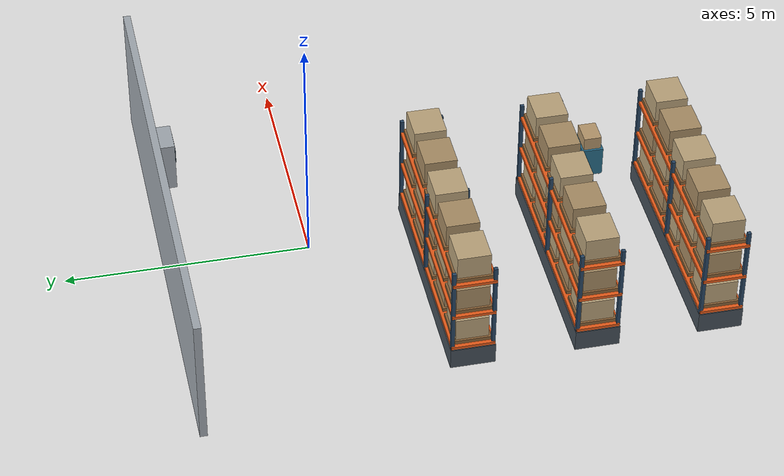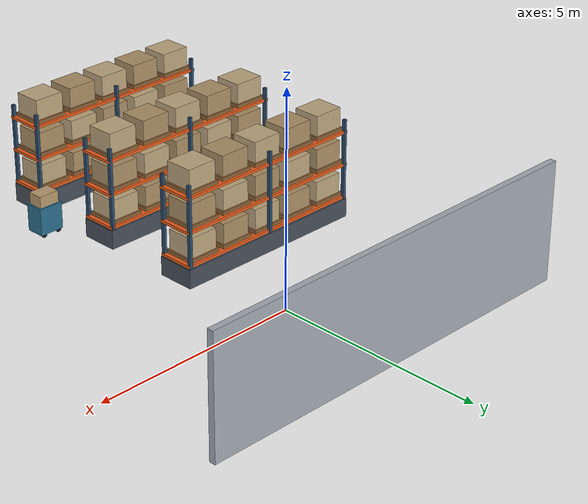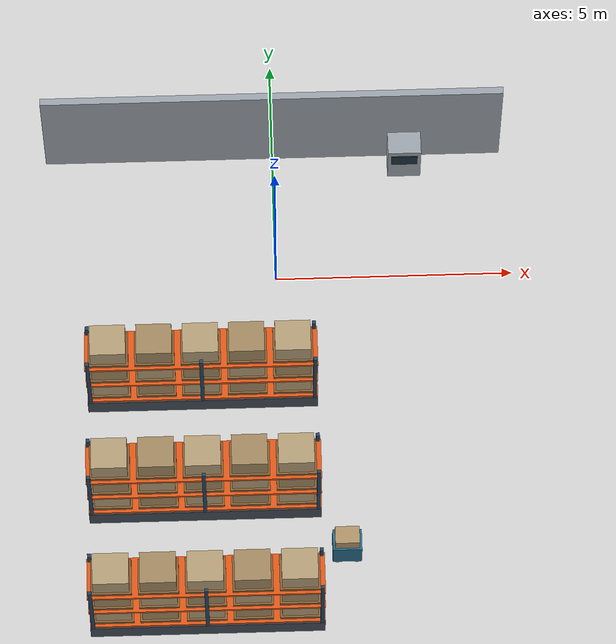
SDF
<sdf version="1.6">
 <world name="warehouse_logistics">
  <model name="warehouse_ground">
   <static>true</static>
   <link name="floor">
    <collision name="floor_collision">
     <geometry><plane><normal>0 0 1</normal><size>40 70</size></plane></geometry>
    </collision>
   </link>
  </model>
  <model name="warehouse_wall_north">
   <static>true</static>
   <pose>0.000000000 2.925000000 0.000000000 0.000000000 0.000000000 0.000000000</pose>
   <link name="structure">
    <collision name="mapped_solid_collision">
     <pose>0.000000000 0.000000000 1.400000000 0.000000000 0.000000000 0.000000000</pose>
     <geometry><box><size>9.700000000 0.150000000 2.800000000</size></box></geometry>
    </collision>
    <visual name="mapped_solid_visual">
     <pose>0.000000000 0.000000000 1.400000000 0.000000000 0.000000000 0.000000000</pose>
     <geometry><box><size>9.700000000 0.150000000 2.800000000</size></box></geometry>
     <material><ambient>.64 .67 .70 1</ambient><diffuse>.64 .67 .70 1</diffuse></material>
    </visual>
   </link>
  </model>
  <model name="warehouse_home_dock">
   <static>true</static>
   <pose>2.800000000 2.600000000 0.000000000 0.000000000 0.000000000 0.000000000</pose>
   <link name="structure">
    <collision name="mapped_solid_collision">
     <pose>0.000000000 0.000000000 0.550000000 0.000000000 0.000000000 0.000000000</pose>
     <geometry><box><size>0.700000000 0.500000000 1.100000000</size></box></geometry>
    </collision>
    <visual name="mapped_solid_visual">
     <pose>0.000000000 0.000000000 0.550000000 0.000000000 0.000000000 0.000000000</pose>
     <geometry><box><size>0.700000000 0.500000000 1.100000000</size></box></geometry>
     <material><ambient>.64 .67 .70 1</ambient><diffuse>.64 .67 .70 1</diffuse></material>
    </visual>
    <visual name="charging_panel_visual">
     <pose>0.000000000 -0.251000000 0.780000000 0.000000000 0.000000000 0.000000000</pose>
     <geometry><box><size>0.550000000 0.040000000 0.350000000</size></box></geometry>
     <material><ambient>.12 .20 .26 1</ambient><diffuse>.12 .20 .26 1</diffuse></material>
    </visual>
   </link>
  </model>
  <model name="warehouse_rack_01">
   <static>true</static>
   <pose>-1.600000000 -2.500000000 0.000000000 0.000000000 0.000000000 0.000000000</pose>
   <link name="structure">
    <collision name="mapped_solid_collision">
     <pose>0.000000000 0.000000000 0.225000000 0.000000000 0.000000000 0.000000000</pose>
     <geometry><box><size>4.800000000 0.900000000 0.450000000</size></box></geometry>
    </collision>
    <visual name="mapped_solid_visual">
     <pose>0.000000000 0.000000000 0.225000000 0.000000000 0.000000000 0.000000000</pose>
     <geometry><box><size>4.800000000 0.900000000 0.450000000</size></box></geometry>
     <material><ambient>.27 .31 .35 1</ambient><diffuse>.27 .31 .35 1</diffuse></material>
    </visual>
    <visual name="upright_0_0_visual">
     <pose>-2.340000000 -0.405000000 1.200000000 0.000000000 0.000000000 0.000000000</pose>
     <geometry><box><size>0.075000000 0.075000000 2.400000000</size></box></geometry>
     <material><ambient>.16 .28 .40 1</ambient><diffuse>.16 .28 .40 1</diffuse></material>
    </visual>
    <visual name="upright_0_1_visual">
     <pose>-2.340000000 0.405000000 1.200000000 0.000000000 0.000000000 0.000000000</pose>
     <geometry><box><size>0.075000000 0.075000000 2.400000000</size></box></geometry>
     <material><ambient>.16 .28 .40 1</ambient><diffuse>.16 .28 .40 1</diffuse></material>
    </visual>
    <visual name="upright_1_0_visual">
     <pose>0.000000000 -0.405000000 1.200000000 0.000000000 0.000000000 0.000000000</pose>
     <geometry><box><size>0.075000000 0.075000000 2.400000000</size></box></geometry>
     <material><ambient>.16 .28 .40 1</ambient><diffuse>.16 .28 .40 1</diffuse></material>
    </visual>
    <visual name="upright_1_1_visual">
     <pose>0.000000000 0.405000000 1.200000000 0.000000000 0.000000000 0.000000000</pose>
     <geometry><box><size>0.075000000 0.075000000 2.400000000</size></box></geometry>
     <material><ambient>.16 .28 .40 1</ambient><diffuse>.16 .28 .40 1</diffuse></material>
    </visual>
    <visual name="upright_2_0_visual">
     <pose>2.340000000 -0.405000000 1.200000000 0.000000000 0.000000000 0.000000000</pose>
     <geometry><box><size>0.075000000 0.075000000 2.400000000</size></box></geometry>
     <material><ambient>.16 .28 .40 1</ambient><diffuse>.16 .28 .40 1</diffuse></material>
    </visual>
    <visual name="upright_2_1_visual">
     <pose>2.340000000 0.405000000 1.200000000 0.000000000 0.000000000 0.000000000</pose>
     <geometry><box><size>0.075000000 0.075000000 2.400000000</size></box></geometry>
     <material><ambient>.16 .28 .40 1</ambient><diffuse>.16 .28 .40 1</diffuse></material>
    </visual>
    <visual name="shelf_0_visual">
     <pose>0.000000000 0.000000000 0.500000000 0.000000000 0.000000000 0.000000000</pose>
     <geometry><box><size>4.800000000 0.870000000 0.065000000</size></box></geometry>
     <material><ambient>.92 .36 .10 1</ambient><diffuse>.92 .36 .10 1</diffuse></material>
    </visual>
    <visual name="pallet_0_0_visual">
     <pose>-1.910000000 0.000000000 0.575000000 0.000000000 0.000000000 0.000000000</pose>
     <geometry><box><size>0.820000000 0.750000000 0.080000000</size></box></geometry>
     <material><ambient>.55 .39 .22 1</ambient><diffuse>.55 .39 .22 1</diffuse></material>
    </visual>
    <visual name="load_0_0_visual">
     <pose>-1.910000000 0.000000000 0.855000000 0.000000000 0.000000000 0.000000000</pose>
     <geometry><box><size>0.730000000 0.660000000 0.480000000</size></box></geometry>
     <material><ambient>.74 .65 .49 1</ambient><diffuse>.74 .65 .49 1</diffuse></material>
    </visual>
    <visual name="pallet_0_1_visual">
     <pose>-0.960000000 0.000000000 0.575000000 0.000000000 0.000000000 0.000000000</pose>
     <geometry><box><size>0.820000000 0.750000000 0.080000000</size></box></geometry>
     <material><ambient>.55 .39 .22 1</ambient><diffuse>.55 .39 .22 1</diffuse></material>
    </visual>
    <visual name="load_0_1_visual">
     <pose>-0.960000000 0.000000000 0.855000000 0.000000000 0.000000000 0.000000000</pose>
     <geometry><box><size>0.730000000 0.660000000 0.480000000</size></box></geometry>
     <material><ambient>.67 .56 .40 1</ambient><diffuse>.67 .56 .40 1</diffuse></material>
    </visual>
    <visual name="pallet_0_2_visual">
     <pose>-0.010000000 0.000000000 0.575000000 0.000000000 0.000000000 0.000000000</pose>
     <geometry><box><size>0.820000000 0.750000000 0.080000000</size></box></geometry>
     <material><ambient>.55 .39 .22 1</ambient><diffuse>.55 .39 .22 1</diffuse></material>
    </visual>
    <visual name="load_0_2_visual">
     <pose>-0.010000000 0.000000000 0.855000000 0.000000000 0.000000000 0.000000000</pose>
     <geometry><box><size>0.730000000 0.660000000 0.480000000</size></box></geometry>
     <material><ambient>.74 .65 .49 1</ambient><diffuse>.74 .65 .49 1</diffuse></material>
    </visual>
    <visual name="pallet_0_3_visual">
     <pose>0.940000000 0.000000000 0.575000000 0.000000000 0.000000000 0.000000000</pose>
     <geometry><box><size>0.820000000 0.750000000 0.080000000</size></box></geometry>
     <material><ambient>.55 .39 .22 1</ambient><diffuse>.55 .39 .22 1</diffuse></material>
    </visual>
    <visual name="load_0_3_visual">
     <pose>0.940000000 0.000000000 0.855000000 0.000000000 0.000000000 0.000000000</pose>
     <geometry><box><size>0.730000000 0.660000000 0.480000000</size></box></geometry>
     <material><ambient>.67 .56 .40 1</ambient><diffuse>.67 .56 .40 1</diffuse></material>
    </visual>
    <visual name="pallet_0_4_visual">
     <pose>1.890000000 0.000000000 0.575000000 0.000000000 0.000000000 0.000000000</pose>
     <geometry><box><size>0.820000000 0.750000000 0.080000000</size></box></geometry>
     <material><ambient>.55 .39 .22 1</ambient><diffuse>.55 .39 .22 1</diffuse></material>
    </visual>
    <visual name="load_0_4_visual">
     <pose>1.890000000 0.000000000 0.855000000 0.000000000 0.000000000 0.000000000</pose>
     <geometry><box><size>0.730000000 0.660000000 0.480000000</size></box></geometry>
     <material><ambient>.74 .65 .49 1</ambient><diffuse>.74 .65 .49 1</diffuse></material>
    </visual>
    <visual name="shelf_1_visual">
     <pose>0.000000000 0.000000000 1.300000000 0.000000000 0.000000000 0.000000000</pose>
     <geometry><box><size>4.800000000 0.870000000 0.065000000</size></box></geometry>
     <material><ambient>.92 .36 .10 1</ambient><diffuse>.92 .36 .10 1</diffuse></material>
    </visual>
    <visual name="pallet_1_0_visual">
     <pose>-1.910000000 0.000000000 1.375000000 0.000000000 0.000000000 0.000000000</pose>
     <geometry><box><size>0.820000000 0.750000000 0.080000000</size></box></geometry>
     <material><ambient>.55 .39 .22 1</ambient><diffuse>.55 .39 .22 1</diffuse></material>
    </visual>
    <visual name="load_1_0_visual">
     <pose>-1.910000000 0.000000000 1.655000000 0.000000000 0.000000000 0.000000000</pose>
     <geometry><box><size>0.730000000 0.660000000 0.480000000</size></box></geometry>
     <material><ambient>.67 .56 .40 1</ambient><diffuse>.67 .56 .40 1</diffuse></material>
    </visual>
    <visual name="pallet_1_1_visual">
     <pose>-0.960000000 0.000000000 1.375000000 0.000000000 0.000000000 0.000000000</pose>
     <geometry><box><size>0.820000000 0.750000000 0.080000000</size></box></geometry>
     <material><ambient>.55 .39 .22 1</ambient><diffuse>.55 .39 .22 1</diffuse></material>
    </visual>
    <visual name="load_1_1_visual">
     <pose>-0.960000000 0.000000000 1.655000000 0.000000000 0.000000000 0.000000000</pose>
     <geometry><box><size>0.730000000 0.660000000 0.480000000</size></box></geometry>
     <material><ambient>.74 .65 .49 1</ambient><diffuse>.74 .65 .49 1</diffuse></material>
    </visual>
    <visual name="pallet_1_2_visual">
     <pose>-0.010000000 0.000000000 1.375000000 0.000000000 0.000000000 0.000000000</pose>
     <geometry><box><size>0.820000000 0.750000000 0.080000000</size></box></geometry>
     <material><ambient>.55 .39 .22 1</ambient><diffuse>.55 .39 .22 1</diffuse></material>
    </visual>
    <visual name="load_1_2_visual">
     <pose>-0.010000000 0.000000000 1.655000000 0.000000000 0.000000000 0.000000000</pose>
     <geometry><box><size>0.730000000 0.660000000 0.480000000</size></box></geometry>
     <material><ambient>.67 .56 .40 1</ambient><diffuse>.67 .56 .40 1</diffuse></material>
    </visual>
    <visual name="pallet_1_3_visual">
     <pose>0.940000000 0.000000000 1.375000000 0.000000000 0.000000000 0.000000000</pose>
     <geometry><box><size>0.820000000 0.750000000 0.080000000</size></box></geometry>
     <material><ambient>.55 .39 .22 1</ambient><diffuse>.55 .39 .22 1</diffuse></material>
    </visual>
    <visual name="load_1_3_visual">
     <pose>0.940000000 0.000000000 1.655000000 0.000000000 0.000000000 0.000000000</pose>
     <geometry><box><size>0.730000000 0.660000000 0.480000000</size></box></geometry>
     <material><ambient>.74 .65 .49 1</ambient><diffuse>.74 .65 .49 1</diffuse></material>
    </visual>
    <visual name="pallet_1_4_visual">
     <pose>1.890000000 0.000000000 1.375000000 0.000000000 0.000000000 0.000000000</pose>
     <geometry><box><size>0.820000000 0.750000000 0.080000000</size></box></geometry>
     <material><ambient>.55 .39 .22 1</ambient><diffuse>.55 .39 .22 1</diffuse></material>
    </visual>
    <visual name="load_1_4_visual">
     <pose>1.890000000 0.000000000 1.655000000 0.000000000 0.000000000 0.000000000</pose>
     <geometry><box><size>0.730000000 0.660000000 0.480000000</size></box></geometry>
     <material><ambient>.67 .56 .40 1</ambient><diffuse>.67 .56 .40 1</diffuse></material>
    </visual>
    <visual name="shelf_2_visual">
     <pose>0.000000000 0.000000000 2.100000000 0.000000000 0.000000000 0.000000000</pose>
     <geometry><box><size>4.800000000 0.870000000 0.065000000</size></box></geometry>
     <material><ambient>.92 .36 .10 1</ambient><diffuse>.92 .36 .10 1</diffuse></material>
    </visual>
    <visual name="pallet_2_0_visual">
     <pose>-1.910000000 0.000000000 2.175000000 0.000000000 0.000000000 0.000000000</pose>
     <geometry><box><size>0.820000000 0.750000000 0.080000000</size></box></geometry>
     <material><ambient>.55 .39 .22 1</ambient><diffuse>.55 .39 .22 1</diffuse></material>
    </visual>
    <visual name="load_2_0_visual">
     <pose>-1.910000000 0.000000000 2.455000000 0.000000000 0.000000000 0.000000000</pose>
     <geometry><box><size>0.730000000 0.660000000 0.480000000</size></box></geometry>
     <material><ambient>.74 .65 .49 1</ambient><diffuse>.74 .65 .49 1</diffuse></material>
    </visual>
    <visual name="pallet_2_1_visual">
     <pose>-0.960000000 0.000000000 2.175000000 0.000000000 0.000000000 0.000000000</pose>
     <geometry><box><size>0.820000000 0.750000000 0.080000000</size></box></geometry>
     <material><ambient>.55 .39 .22 1</ambient><diffuse>.55 .39 .22 1</diffuse></material>
    </visual>
    <visual name="load_2_1_visual">
     <pose>-0.960000000 0.000000000 2.455000000 0.000000000 0.000000000 0.000000000</pose>
     <geometry><box><size>0.730000000 0.660000000 0.480000000</size></box></geometry>
     <material><ambient>.67 .56 .40 1</ambient><diffuse>.67 .56 .40 1</diffuse></material>
    </visual>
    <visual name="pallet_2_2_visual">
     <pose>-0.010000000 0.000000000 2.175000000 0.000000000 0.000000000 0.000000000</pose>
     <geometry><box><size>0.820000000 0.750000000 0.080000000</size></box></geometry>
     <material><ambient>.55 .39 .22 1</ambient><diffuse>.55 .39 .22 1</diffuse></material>
    </visual>
    <visual name="load_2_2_visual">
     <pose>-0.010000000 0.000000000 2.455000000 0.000000000 0.000000000 0.000000000</pose>
     <geometry><box><size>0.730000000 0.660000000 0.480000000</size></box></geometry>
     <material><ambient>.74 .65 .49 1</ambient><diffuse>.74 .65 .49 1</diffuse></material>
    </visual>
    <visual name="pallet_2_3_visual">
     <pose>0.940000000 0.000000000 2.175000000 0.000000000 0.000000000 0.000000000</pose>
     <geometry><box><size>0.820000000 0.750000000 0.080000000</size></box></geometry>
     <material><ambient>.55 .39 .22 1</ambient><diffuse>.55 .39 .22 1</diffuse></material>
    </visual>
    <visual name="load_2_3_visual">
     <pose>0.940000000 0.000000000 2.455000000 0.000000000 0.000000000 0.000000000</pose>
     <geometry><box><size>0.730000000 0.660000000 0.480000000</size></box></geometry>
     <material><ambient>.67 .56 .40 1</ambient><diffuse>.67 .56 .40 1</diffuse></material>
    </visual>
    <visual name="pallet_2_4_visual">
     <pose>1.890000000 0.000000000 2.175000000 0.000000000 0.000000000 0.000000000</pose>
     <geometry><box><size>0.820000000 0.750000000 0.080000000</size></box></geometry>
     <material><ambient>.55 .39 .22 1</ambient><diffuse>.55 .39 .22 1</diffuse></material>
    </visual>
    <visual name="load_2_4_visual">
     <pose>1.890000000 0.000000000 2.455000000 0.000000000 0.000000000 0.000000000</pose>
     <geometry><box><size>0.730000000 0.660000000 0.480000000</size></box></geometry>
     <material><ambient>.74 .65 .49 1</ambient><diffuse>.74 .65 .49 1</diffuse></material>
    </visual>
   </link>
  </model>
  <model name="warehouse_rack_02">
   <static>true</static>
   <pose>-1.600000000 -5.000000000 0.000000000 0.000000000 0.000000000 0.000000000</pose>
   <link name="structure">
    <collision name="mapped_solid_collision">
     <pose>0.000000000 0.000000000 0.225000000 0.000000000 0.000000000 0.000000000</pose>
     <geometry><box><size>4.800000000 0.900000000 0.450000000</size></box></geometry>
    </collision>
    <visual name="mapped_solid_visual">
     <pose>0.000000000 0.000000000 0.225000000 0.000000000 0.000000000 0.000000000</pose>
     <geometry><box><size>4.800000000 0.900000000 0.450000000</size></box></geometry>
     <material><ambient>.27 .31 .35 1</ambient><diffuse>.27 .31 .35 1</diffuse></material>
    </visual>
    <visual name="upright_0_0_visual">
     <pose>-2.340000000 -0.405000000 1.200000000 0.000000000 0.000000000 0.000000000</pose>
     <geometry><box><size>0.075000000 0.075000000 2.400000000</size></box></geometry>
     <material><ambient>.16 .28 .40 1</ambient><diffuse>.16 .28 .40 1</diffuse></material>
    </visual>
    <visual name="upright_0_1_visual">
     <pose>-2.340000000 0.405000000 1.200000000 0.000000000 0.000000000 0.000000000</pose>
     <geometry><box><size>0.075000000 0.075000000 2.400000000</size></box></geometry>
     <material><ambient>.16 .28 .40 1</ambient><diffuse>.16 .28 .40 1</diffuse></material>
    </visual>
    <visual name="upright_1_0_visual">
     <pose>0.000000000 -0.405000000 1.200000000 0.000000000 0.000000000 0.000000000</pose>
     <geometry><box><size>0.075000000 0.075000000 2.400000000</size></box></geometry>
     <material><ambient>.16 .28 .40 1</ambient><diffuse>.16 .28 .40 1</diffuse></material>
    </visual>
    <visual name="upright_1_1_visual">
     <pose>0.000000000 0.405000000 1.200000000 0.000000000 0.000000000 0.000000000</pose>
     <geometry><box><size>0.075000000 0.075000000 2.400000000</size></box></geometry>
     <material><ambient>.16 .28 .40 1</ambient><diffuse>.16 .28 .40 1</diffuse></material>
    </visual>
    <visual name="upright_2_0_visual">
     <pose>2.340000000 -0.405000000 1.200000000 0.000000000 0.000000000 0.000000000</pose>
     <geometry><box><size>0.075000000 0.075000000 2.400000000</size></box></geometry>
     <material><ambient>.16 .28 .40 1</ambient><diffuse>.16 .28 .40 1</diffuse></material>
    </visual>
    <visual name="upright_2_1_visual">
     <pose>2.340000000 0.405000000 1.200000000 0.000000000 0.000000000 0.000000000</pose>
     <geometry><box><size>0.075000000 0.075000000 2.400000000</size></box></geometry>
     <material><ambient>.16 .28 .40 1</ambient><diffuse>.16 .28 .40 1</diffuse></material>
    </visual>
    <visual name="shelf_0_visual">
     <pose>0.000000000 0.000000000 0.500000000 0.000000000 0.000000000 0.000000000</pose>
     <geometry><box><size>4.800000000 0.870000000 0.065000000</size></box></geometry>
     <material><ambient>.92 .36 .10 1</ambient><diffuse>.92 .36 .10 1</diffuse></material>
    </visual>
    <visual name="pallet_0_0_visual">
     <pose>-1.910000000 0.000000000 0.575000000 0.000000000 0.000000000 0.000000000</pose>
     <geometry><box><size>0.820000000 0.750000000 0.080000000</size></box></geometry>
     <material><ambient>.55 .39 .22 1</ambient><diffuse>.55 .39 .22 1</diffuse></material>
    </visual>
    <visual name="load_0_0_visual">
     <pose>-1.910000000 0.000000000 0.855000000 0.000000000 0.000000000 0.000000000</pose>
     <geometry><box><size>0.730000000 0.660000000 0.480000000</size></box></geometry>
     <material><ambient>.74 .65 .49 1</ambient><diffuse>.74 .65 .49 1</diffuse></material>
    </visual>
    <visual name="pallet_0_1_visual">
     <pose>-0.960000000 0.000000000 0.575000000 0.000000000 0.000000000 0.000000000</pose>
     <geometry><box><size>0.820000000 0.750000000 0.080000000</size></box></geometry>
     <material><ambient>.55 .39 .22 1</ambient><diffuse>.55 .39 .22 1</diffuse></material>
    </visual>
    <visual name="load_0_1_visual">
     <pose>-0.960000000 0.000000000 0.855000000 0.000000000 0.000000000 0.000000000</pose>
     <geometry><box><size>0.730000000 0.660000000 0.480000000</size></box></geometry>
     <material><ambient>.67 .56 .40 1</ambient><diffuse>.67 .56 .40 1</diffuse></material>
    </visual>
    <visual name="pallet_0_2_visual">
     <pose>-0.010000000 0.000000000 0.575000000 0.000000000 0.000000000 0.000000000</pose>
     <geometry><box><size>0.820000000 0.750000000 0.080000000</size></box></geometry>
     <material><ambient>.55 .39 .22 1</ambient><diffuse>.55 .39 .22 1</diffuse></material>
    </visual>
    <visual name="load_0_2_visual">
     <pose>-0.010000000 0.000000000 0.855000000 0.000000000 0.000000000 0.000000000</pose>
     <geometry><box><size>0.730000000 0.660000000 0.480000000</size></box></geometry>
     <material><ambient>.74 .65 .49 1</ambient><diffuse>.74 .65 .49 1</diffuse></material>
    </visual>
    <visual name="pallet_0_3_visual">
     <pose>0.940000000 0.000000000 0.575000000 0.000000000 0.000000000 0.000000000</pose>
     <geometry><box><size>0.820000000 0.750000000 0.080000000</size></box></geometry>
     <material><ambient>.55 .39 .22 1</ambient><diffuse>.55 .39 .22 1</diffuse></material>
    </visual>
    <visual name="load_0_3_visual">
     <pose>0.940000000 0.000000000 0.855000000 0.000000000 0.000000000 0.000000000</pose>
     <geometry><box><size>0.730000000 0.660000000 0.480000000</size></box></geometry>
     <material><ambient>.67 .56 .40 1</ambient><diffuse>.67 .56 .40 1</diffuse></material>
    </visual>
    <visual name="pallet_0_4_visual">
     <pose>1.890000000 0.000000000 0.575000000 0.000000000 0.000000000 0.000000000</pose>
     <geometry><box><size>0.820000000 0.750000000 0.080000000</size></box></geometry>
     <material><ambient>.55 .39 .22 1</ambient><diffuse>.55 .39 .22 1</diffuse></material>
    </visual>
    <visual name="load_0_4_visual">
     <pose>1.890000000 0.000000000 0.855000000 0.000000000 0.000000000 0.000000000</pose>
     <geometry><box><size>0.730000000 0.660000000 0.480000000</size></box></geometry>
     <material><ambient>.74 .65 .49 1</ambient><diffuse>.74 .65 .49 1</diffuse></material>
    </visual>
    <visual name="shelf_1_visual">
     <pose>0.000000000 0.000000000 1.300000000 0.000000000 0.000000000 0.000000000</pose>
     <geometry><box><size>4.800000000 0.870000000 0.065000000</size></box></geometry>
     <material><ambient>.92 .36 .10 1</ambient><diffuse>.92 .36 .10 1</diffuse></material>
    </visual>
    <visual name="pallet_1_0_visual">
     <pose>-1.910000000 0.000000000 1.375000000 0.000000000 0.000000000 0.000000000</pose>
     <geometry><box><size>0.820000000 0.750000000 0.080000000</size></box></geometry>
     <material><ambient>.55 .39 .22 1</ambient><diffuse>.55 .39 .22 1</diffuse></material>
    </visual>
    <visual name="load_1_0_visual">
     <pose>-1.910000000 0.000000000 1.655000000 0.000000000 0.000000000 0.000000000</pose>
     <geometry><box><size>0.730000000 0.660000000 0.480000000</size></box></geometry>
     <material><ambient>.67 .56 .40 1</ambient><diffuse>.67 .56 .40 1</diffuse></material>
    </visual>
    <visual name="pallet_1_1_visual">
     <pose>-0.960000000 0.000000000 1.375000000 0.000000000 0.000000000 0.000000000</pose>
     <geometry><box><size>0.820000000 0.750000000 0.080000000</size></box></geometry>
     <material><ambient>.55 .39 .22 1</ambient><diffuse>.55 .39 .22 1</diffuse></material>
    </visual>
    <visual name="load_1_1_visual">
     <pose>-0.960000000 0.000000000 1.655000000 0.000000000 0.000000000 0.000000000</pose>
     <geometry><box><size>0.730000000 0.660000000 0.480000000</size></box></geometry>
     <material><ambient>.74 .65 .49 1</ambient><diffuse>.74 .65 .49 1</diffuse></material>
    </visual>
    <visual name="pallet_1_2_visual">
     <pose>-0.010000000 0.000000000 1.375000000 0.000000000 0.000000000 0.000000000</pose>
     <geometry><box><size>0.820000000 0.750000000 0.080000000</size></box></geometry>
     <material><ambient>.55 .39 .22 1</ambient><diffuse>.55 .39 .22 1</diffuse></material>
    </visual>
    <visual name="load_1_2_visual">
     <pose>-0.010000000 0.000000000 1.655000000 0.000000000 0.000000000 0.000000000</pose>
     <geometry><box><size>0.730000000 0.660000000 0.480000000</size></box></geometry>
     <material><ambient>.67 .56 .40 1</ambient><diffuse>.67 .56 .40 1</diffuse></material>
    </visual>
    <visual name="pallet_1_3_visual">
     <pose>0.940000000 0.000000000 1.375000000 0.000000000 0.000000000 0.000000000</pose>
     <geometry><box><size>0.820000000 0.750000000 0.080000000</size></box></geometry>
     <material><ambient>.55 .39 .22 1</ambient><diffuse>.55 .39 .22 1</diffuse></material>
    </visual>
    <visual name="load_1_3_visual">
     <pose>0.940000000 0.000000000 1.655000000 0.000000000 0.000000000 0.000000000</pose>
     <geometry><box><size>0.730000000 0.660000000 0.480000000</size></box></geometry>
     <material><ambient>.74 .65 .49 1</ambient><diffuse>.74 .65 .49 1</diffuse></material>
    </visual>
    <visual name="pallet_1_4_visual">
     <pose>1.890000000 0.000000000 1.375000000 0.000000000 0.000000000 0.000000000</pose>
     <geometry><box><size>0.820000000 0.750000000 0.080000000</size></box></geometry>
     <material><ambient>.55 .39 .22 1</ambient><diffuse>.55 .39 .22 1</diffuse></material>
    </visual>
    <visual name="load_1_4_visual">
     <pose>1.890000000 0.000000000 1.655000000 0.000000000 0.000000000 0.000000000</pose>
     <geometry><box><size>0.730000000 0.660000000 0.480000000</size></box></geometry>
     <material><ambient>.67 .56 .40 1</ambient><diffuse>.67 .56 .40 1</diffuse></material>
    </visual>
    <visual name="shelf_2_visual">
     <pose>0.000000000 0.000000000 2.100000000 0.000000000 0.000000000 0.000000000</pose>
     <geometry><box><size>4.800000000 0.870000000 0.065000000</size></box></geometry>
     <material><ambient>.92 .36 .10 1</ambient><diffuse>.92 .36 .10 1</diffuse></material>
    </visual>
    <visual name="pallet_2_0_visual">
     <pose>-1.910000000 0.000000000 2.175000000 0.000000000 0.000000000 0.000000000</pose>
     <geometry><box><size>0.820000000 0.750000000 0.080000000</size></box></geometry>
     <material><ambient>.55 .39 .22 1</ambient><diffuse>.55 .39 .22 1</diffuse></material>
    </visual>
    <visual name="load_2_0_visual">
     <pose>-1.910000000 0.000000000 2.455000000 0.000000000 0.000000000 0.000000000</pose>
     <geometry><box><size>0.730000000 0.660000000 0.480000000</size></box></geometry>
     <material><ambient>.74 .65 .49 1</ambient><diffuse>.74 .65 .49 1</diffuse></material>
    </visual>
    <visual name="pallet_2_1_visual">
     <pose>-0.960000000 0.000000000 2.175000000 0.000000000 0.000000000 0.000000000</pose>
     <geometry><box><size>0.820000000 0.750000000 0.080000000</size></box></geometry>
     <material><ambient>.55 .39 .22 1</ambient><diffuse>.55 .39 .22 1</diffuse></material>
    </visual>
    <visual name="load_2_1_visual">
     <pose>-0.960000000 0.000000000 2.455000000 0.000000000 0.000000000 0.000000000</pose>
     <geometry><box><size>0.730000000 0.660000000 0.480000000</size></box></geometry>
     <material><ambient>.67 .56 .40 1</ambient><diffuse>.67 .56 .40 1</diffuse></material>
    </visual>
    <visual name="pallet_2_2_visual">
     <pose>-0.010000000 0.000000000 2.175000000 0.000000000 0.000000000 0.000000000</pose>
     <geometry><box><size>0.820000000 0.750000000 0.080000000</size></box></geometry>
     <material><ambient>.55 .39 .22 1</ambient><diffuse>.55 .39 .22 1</diffuse></material>
    </visual>
    <visual name="load_2_2_visual">
     <pose>-0.010000000 0.000000000 2.455000000 0.000000000 0.000000000 0.000000000</pose>
     <geometry><box><size>0.730000000 0.660000000 0.480000000</size></box></geometry>
     <material><ambient>.74 .65 .49 1</ambient><diffuse>.74 .65 .49 1</diffuse></material>
    </visual>
    <visual name="pallet_2_3_visual">
     <pose>0.940000000 0.000000000 2.175000000 0.000000000 0.000000000 0.000000000</pose>
     <geometry><box><size>0.820000000 0.750000000 0.080000000</size></box></geometry>
     <material><ambient>.55 .39 .22 1</ambient><diffuse>.55 .39 .22 1</diffuse></material>
    </visual>
    <visual name="load_2_3_visual">
     <pose>0.940000000 0.000000000 2.455000000 0.000000000 0.000000000 0.000000000</pose>
     <geometry><box><size>0.730000000 0.660000000 0.480000000</size></box></geometry>
     <material><ambient>.67 .56 .40 1</ambient><diffuse>.67 .56 .40 1</diffuse></material>
    </visual>
    <visual name="pallet_2_4_visual">
     <pose>1.890000000 0.000000000 2.175000000 0.000000000 0.000000000 0.000000000</pose>
     <geometry><box><size>0.820000000 0.750000000 0.080000000</size></box></geometry>
     <material><ambient>.55 .39 .22 1</ambient><diffuse>.55 .39 .22 1</diffuse></material>
    </visual>
    <visual name="load_2_4_visual">
     <pose>1.890000000 0.000000000 2.455000000 0.000000000 0.000000000 0.000000000</pose>
     <geometry><box><size>0.730000000 0.660000000 0.480000000</size></box></geometry>
     <material><ambient>.74 .65 .49 1</ambient><diffuse>.74 .65 .49 1</diffuse></material>
    </visual>
   </link>
  </model>
  <model name="warehouse_rack_03">
   <static>true</static>
   <pose>-1.600000000 -7.500000000 0.000000000 0.000000000 0.000000000 0.000000000</pose>
   <link name="structure">
    <collision name="mapped_solid_collision">
     <pose>0.000000000 0.000000000 0.225000000 0.000000000 0.000000000 0.000000000</pose>
     <geometry><box><size>4.800000000 0.900000000 0.450000000</size></box></geometry>
    </collision>
    <visual name="mapped_solid_visual">
     <pose>0.000000000 0.000000000 0.225000000 0.000000000 0.000000000 0.000000000</pose>
     <geometry><box><size>4.800000000 0.900000000 0.450000000</size></box></geometry>
     <material><ambient>.27 .31 .35 1</ambient><diffuse>.27 .31 .35 1</diffuse></material>
    </visual>
    <visual name="upright_0_0_visual">
     <pose>-2.340000000 -0.405000000 1.200000000 0.000000000 0.000000000 0.000000000</pose>
     <geometry><box><size>0.075000000 0.075000000 2.400000000</size></box></geometry>
     <material><ambient>.16 .28 .40 1</ambient><diffuse>.16 .28 .40 1</diffuse></material>
    </visual>
    <visual name="upright_0_1_visual">
     <pose>-2.340000000 0.405000000 1.200000000 0.000000000 0.000000000 0.000000000</pose>
     <geometry><box><size>0.075000000 0.075000000 2.400000000</size></box></geometry>
     <material><ambient>.16 .28 .40 1</ambient><diffuse>.16 .28 .40 1</diffuse></material>
    </visual>
    <visual name="upright_1_0_visual">
     <pose>0.000000000 -0.405000000 1.200000000 0.000000000 0.000000000 0.000000000</pose>
     <geometry><box><size>0.075000000 0.075000000 2.400000000</size></box></geometry>
     <material><ambient>.16 .28 .40 1</ambient><diffuse>.16 .28 .40 1</diffuse></material>
    </visual>
    <visual name="upright_1_1_visual">
     <pose>0.000000000 0.405000000 1.200000000 0.000000000 0.000000000 0.000000000</pose>
     <geometry><box><size>0.075000000 0.075000000 2.400000000</size></box></geometry>
     <material><ambient>.16 .28 .40 1</ambient><diffuse>.16 .28 .40 1</diffuse></material>
    </visual>
    <visual name="upright_2_0_visual">
     <pose>2.340000000 -0.405000000 1.200000000 0.000000000 0.000000000 0.000000000</pose>
     <geometry><box><size>0.075000000 0.075000000 2.400000000</size></box></geometry>
     <material><ambient>.16 .28 .40 1</ambient><diffuse>.16 .28 .40 1</diffuse></material>
    </visual>
    <visual name="upright_2_1_visual">
     <pose>2.340000000 0.405000000 1.200000000 0.000000000 0.000000000 0.000000000</pose>
     <geometry><box><size>0.075000000 0.075000000 2.400000000</size></box></geometry>
     <material><ambient>.16 .28 .40 1</ambient><diffuse>.16 .28 .40 1</diffuse></material>
    </visual>
    <visual name="shelf_0_visual">
     <pose>0.000000000 0.000000000 0.500000000 0.000000000 0.000000000 0.000000000</pose>
     <geometry><box><size>4.800000000 0.870000000 0.065000000</size></box></geometry>
     <material><ambient>.92 .36 .10 1</ambient><diffuse>.92 .36 .10 1</diffuse></material>
    </visual>
    <visual name="pallet_0_0_visual">
     <pose>-1.910000000 0.000000000 0.575000000 0.000000000 0.000000000 0.000000000</pose>
     <geometry><box><size>0.820000000 0.750000000 0.080000000</size></box></geometry>
     <material><ambient>.55 .39 .22 1</ambient><diffuse>.55 .39 .22 1</diffuse></material>
    </visual>
    <visual name="load_0_0_visual">
     <pose>-1.910000000 0.000000000 0.855000000 0.000000000 0.000000000 0.000000000</pose>
     <geometry><box><size>0.730000000 0.660000000 0.480000000</size></box></geometry>
     <material><ambient>.74 .65 .49 1</ambient><diffuse>.74 .65 .49 1</diffuse></material>
    </visual>
    <visual name="pallet_0_1_visual">
     <pose>-0.960000000 0.000000000 0.575000000 0.000000000 0.000000000 0.000000000</pose>
     <geometry><box><size>0.820000000 0.750000000 0.080000000</size></box></geometry>
     <material><ambient>.55 .39 .22 1</ambient><diffuse>.55 .39 .22 1</diffuse></material>
    </visual>
    <visual name="load_0_1_visual">
     <pose>-0.960000000 0.000000000 0.855000000 0.000000000 0.000000000 0.000000000</pose>
     <geometry><box><size>0.730000000 0.660000000 0.480000000</size></box></geometry>
     <material><ambient>.67 .56 .40 1</ambient><diffuse>.67 .56 .40 1</diffuse></material>
    </visual>
    <visual name="pallet_0_2_visual">
     <pose>-0.010000000 0.000000000 0.575000000 0.000000000 0.000000000 0.000000000</pose>
     <geometry><box><size>0.820000000 0.750000000 0.080000000</size></box></geometry>
     <material><ambient>.55 .39 .22 1</ambient><diffuse>.55 .39 .22 1</diffuse></material>
    </visual>
    <visual name="load_0_2_visual">
     <pose>-0.010000000 0.000000000 0.855000000 0.000000000 0.000000000 0.000000000</pose>
     <geometry><box><size>0.730000000 0.660000000 0.480000000</size></box></geometry>
     <material><ambient>.74 .65 .49 1</ambient><diffuse>.74 .65 .49 1</diffuse></material>
    </visual>
    <visual name="pallet_0_3_visual">
     <pose>0.940000000 0.000000000 0.575000000 0.000000000 0.000000000 0.000000000</pose>
     <geometry><box><size>0.820000000 0.750000000 0.080000000</size></box></geometry>
     <material><ambient>.55 .39 .22 1</ambient><diffuse>.55 .39 .22 1</diffuse></material>
    </visual>
    <visual name="load_0_3_visual">
     <pose>0.940000000 0.000000000 0.855000000 0.000000000 0.000000000 0.000000000</pose>
     <geometry><box><size>0.730000000 0.660000000 0.480000000</size></box></geometry>
     <material><ambient>.67 .56 .40 1</ambient><diffuse>.67 .56 .40 1</diffuse></material>
    </visual>
    <visual name="pallet_0_4_visual">
     <pose>1.890000000 0.000000000 0.575000000 0.000000000 0.000000000 0.000000000</pose>
     <geometry><box><size>0.820000000 0.750000000 0.080000000</size></box></geometry>
     <material><ambient>.55 .39 .22 1</ambient><diffuse>.55 .39 .22 1</diffuse></material>
    </visual>
    <visual name="load_0_4_visual">
     <pose>1.890000000 0.000000000 0.855000000 0.000000000 0.000000000 0.000000000</pose>
     <geometry><box><size>0.730000000 0.660000000 0.480000000</size></box></geometry>
     <material><ambient>.74 .65 .49 1</ambient><diffuse>.74 .65 .49 1</diffuse></material>
    </visual>
    <visual name="shelf_1_visual">
     <pose>0.000000000 0.000000000 1.300000000 0.000000000 0.000000000 0.000000000</pose>
     <geometry><box><size>4.800000000 0.870000000 0.065000000</size></box></geometry>
     <material><ambient>.92 .36 .10 1</ambient><diffuse>.92 .36 .10 1</diffuse></material>
    </visual>
    <visual name="pallet_1_0_visual">
     <pose>-1.910000000 0.000000000 1.375000000 0.000000000 0.000000000 0.000000000</pose>
     <geometry><box><size>0.820000000 0.750000000 0.080000000</size></box></geometry>
     <material><ambient>.55 .39 .22 1</ambient><diffuse>.55 .39 .22 1</diffuse></material>
    </visual>
    <visual name="load_1_0_visual">
     <pose>-1.910000000 0.000000000 1.655000000 0.000000000 0.000000000 0.000000000</pose>
     <geometry><box><size>0.730000000 0.660000000 0.480000000</size></box></geometry>
     <material><ambient>.67 .56 .40 1</ambient><diffuse>.67 .56 .40 1</diffuse></material>
    </visual>
    <visual name="pallet_1_1_visual">
     <pose>-0.960000000 0.000000000 1.375000000 0.000000000 0.000000000 0.000000000</pose>
     <geometry><box><size>0.820000000 0.750000000 0.080000000</size></box></geometry>
     <material><ambient>.55 .39 .22 1</ambient><diffuse>.55 .39 .22 1</diffuse></material>
    </visual>
    <visual name="load_1_1_visual">
     <pose>-0.960000000 0.000000000 1.655000000 0.000000000 0.000000000 0.000000000</pose>
     <geometry><box><size>0.730000000 0.660000000 0.480000000</size></box></geometry>
     <material><ambient>.74 .65 .49 1</ambient><diffuse>.74 .65 .49 1</diffuse></material>
    </visual>
    <visual name="pallet_1_2_visual">
     <pose>-0.010000000 0.000000000 1.375000000 0.000000000 0.000000000 0.000000000</pose>
     <geometry><box><size>0.820000000 0.750000000 0.080000000</size></box></geometry>
     <material><ambient>.55 .39 .22 1</ambient><diffuse>.55 .39 .22 1</diffuse></material>
    </visual>
    <visual name="load_1_2_visual">
     <pose>-0.010000000 0.000000000 1.655000000 0.000000000 0.000000000 0.000000000</pose>
     <geometry><box><size>0.730000000 0.660000000 0.480000000</size></box></geometry>
     <material><ambient>.67 .56 .40 1</ambient><diffuse>.67 .56 .40 1</diffuse></material>
    </visual>
    <visual name="pallet_1_3_visual">
     <pose>0.940000000 0.000000000 1.375000000 0.000000000 0.000000000 0.000000000</pose>
     <geometry><box><size>0.820000000 0.750000000 0.080000000</size></box></geometry>
     <material><ambient>.55 .39 .22 1</ambient><diffuse>.55 .39 .22 1</diffuse></material>
    </visual>
    <visual name="load_1_3_visual">
     <pose>0.940000000 0.000000000 1.655000000 0.000000000 0.000000000 0.000000000</pose>
     <geometry><box><size>0.730000000 0.660000000 0.480000000</size></box></geometry>
     <material><ambient>.74 .65 .49 1</ambient><diffuse>.74 .65 .49 1</diffuse></material>
    </visual>
    <visual name="pallet_1_4_visual">
     <pose>1.890000000 0.000000000 1.375000000 0.000000000 0.000000000 0.000000000</pose>
     <geometry><box><size>0.820000000 0.750000000 0.080000000</size></box></geometry>
     <material><ambient>.55 .39 .22 1</ambient><diffuse>.55 .39 .22 1</diffuse></material>
    </visual>
    <visual name="load_1_4_visual">
     <pose>1.890000000 0.000000000 1.655000000 0.000000000 0.000000000 0.000000000</pose>
     <geometry><box><size>0.730000000 0.660000000 0.480000000</size></box></geometry>
     <material><ambient>.67 .56 .40 1</ambient><diffuse>.67 .56 .40 1</diffuse></material>
    </visual>
    <visual name="shelf_2_visual">
     <pose>0.000000000 0.000000000 2.100000000 0.000000000 0.000000000 0.000000000</pose>
     <geometry><box><size>4.800000000 0.870000000 0.065000000</size></box></geometry>
     <material><ambient>.92 .36 .10 1</ambient><diffuse>.92 .36 .10 1</diffuse></material>
    </visual>
    <visual name="pallet_2_0_visual">
     <pose>-1.910000000 0.000000000 2.175000000 0.000000000 0.000000000 0.000000000</pose>
     <geometry><box><size>0.820000000 0.750000000 0.080000000</size></box></geometry>
     <material><ambient>.55 .39 .22 1</ambient><diffuse>.55 .39 .22 1</diffuse></material>
    </visual>
    <visual name="load_2_0_visual">
     <pose>-1.910000000 0.000000000 2.455000000 0.000000000 0.000000000 0.000000000</pose>
     <geometry><box><size>0.730000000 0.660000000 0.480000000</size></box></geometry>
     <material><ambient>.74 .65 .49 1</ambient><diffuse>.74 .65 .49 1</diffuse></material>
    </visual>
    <visual name="pallet_2_1_visual">
     <pose>-0.960000000 0.000000000 2.175000000 0.000000000 0.000000000 0.000000000</pose>
     <geometry><box><size>0.820000000 0.750000000 0.080000000</size></box></geometry>
     <material><ambient>.55 .39 .22 1</ambient><diffuse>.55 .39 .22 1</diffuse></material>
    </visual>
    <visual name="load_2_1_visual">
     <pose>-0.960000000 0.000000000 2.455000000 0.000000000 0.000000000 0.000000000</pose>
     <geometry><box><size>0.730000000 0.660000000 0.480000000</size></box></geometry>
     <material><ambient>.67 .56 .40 1</ambient><diffuse>.67 .56 .40 1</diffuse></material>
    </visual>
    <visual name="pallet_2_2_visual">
     <pose>-0.010000000 0.000000000 2.175000000 0.000000000 0.000000000 0.000000000</pose>
     <geometry><box><size>0.820000000 0.750000000 0.080000000</size></box></geometry>
     <material><ambient>.55 .39 .22 1</ambient><diffuse>.55 .39 .22 1</diffuse></material>
    </visual>
    <visual name="load_2_2_visual">
     <pose>-0.010000000 0.000000000 2.455000000 0.000000000 0.000000000 0.000000000</pose>
     <geometry><box><size>0.730000000 0.660000000 0.480000000</size></box></geometry>
     <material><ambient>.74 .65 .49 1</ambient><diffuse>.74 .65 .49 1</diffuse></material>
    </visual>
    <visual name="pallet_2_3_visual">
     <pose>0.940000000 0.000000000 2.175000000 0.000000000 0.000000000 0.000000000</pose>
     <geometry><box><size>0.820000000 0.750000000 0.080000000</size></box></geometry>
     <material><ambient>.55 .39 .22 1</ambient><diffuse>.55 .39 .22 1</diffuse></material>
    </visual>
    <visual name="load_2_3_visual">
     <pose>0.940000000 0.000000000 2.455000000 0.000000000 0.000000000 0.000000000</pose>
     <geometry><box><size>0.730000000 0.660000000 0.480000000</size></box></geometry>
     <material><ambient>.67 .56 .40 1</ambient><diffuse>.67 .56 .40 1</diffuse></material>
    </visual>
    <visual name="pallet_2_4_visual">
     <pose>1.890000000 0.000000000 2.175000000 0.000000000 0.000000000 0.000000000</pose>
     <geometry><box><size>0.820000000 0.750000000 0.080000000</size></box></geometry>
     <material><ambient>.55 .39 .22 1</ambient><diffuse>.55 .39 .22 1</diffuse></material>
    </visual>
    <visual name="load_2_4_visual">
     <pose>1.890000000 0.000000000 2.455000000 0.000000000 0.000000000 0.000000000</pose>
     <geometry><box><size>0.730000000 0.660000000 0.480000000</size></box></geometry>
     <material><ambient>.74 .65 .49 1</ambient><diffuse>.74 .65 .49 1</diffuse></material>
    </visual>
   </link>
  </model>
  <model name="warehouse_cart_1">
   <static>false</static>
   <pose>1.300000000 -6.250000000 0.000000000 0.000000000 0.000000000 0.000000000</pose>
   <link name="body">
    <kinematic>true</kinematic>
    <gravity>false</gravity>
    <inertial><mass>30</mass><inertia><ixx>1</ixx><iyy>1</iyy><izz>1</izz></inertia></inertial>
    <collision name="cart_body_collision">
     <pose>0.000000000 0.000000000 0.400000000 0.000000000 0.000000000 0.000000000</pose>
     <geometry><box><size>0.600000000 0.450000000 0.650000000</size></box></geometry>
    </collision>
    <visual name="cart_body_visual">
     <pose>0.000000000 0.000000000 0.400000000 0.000000000 0.000000000 0.000000000</pose>
     <geometry><box><size>0.600000000 0.450000000 0.650000000</size></box></geometry>
     <material><ambient>.16 .43 .55 1</ambient><diffuse>.16 .43 .55 1</diffuse></material>
    </visual>
    <visual name="cart_load_visual">
     <pose>0.000000000 0.000000000 0.865000000 0.000000000 0.000000000 0.000000000</pose>
     <geometry><box><size>0.500000000 0.370000000 0.280000000</size></box></geometry>
     <material><ambient>.72 .60 .43 1</ambient><diffuse>.72 .60 .43 1</diffuse></material>
    </visual>
    <visual name="wheel_0_0_visual">
     <pose>-0.200000000 -0.190000000 0.070000000 1.570796327 0.000000000 0.000000000</pose>
     <geometry><cylinder><radius>0.07</radius><length>0.04</length></cylinder></geometry>
     <material><ambient>.10 .12 .14 1</ambient><diffuse>.10 .12 .14 1</diffuse></material>
    </visual>
    <visual name="wheel_0_1_visual">
     <pose>-0.200000000 0.190000000 0.070000000 1.570796327 0.000000000 0.000000000</pose>
     <geometry><cylinder><radius>0.07</radius><length>0.04</length></cylinder></geometry>
     <material><ambient>.10 .12 .14 1</ambient><diffuse>.10 .12 .14 1</diffuse></material>
    </visual>
    <visual name="wheel_1_0_visual">
     <pose>0.200000000 -0.190000000 0.070000000 1.570796327 0.000000000 0.000000000</pose>
     <geometry><cylinder><radius>0.07</radius><length>0.04</length></cylinder></geometry>
     <material><ambient>.10 .12 .14 1</ambient><diffuse>.10 .12 .14 1</diffuse></material>
    </visual>
    <visual name="wheel_1_1_visual">
     <pose>0.200000000 0.190000000 0.070000000 1.570796327 0.000000000 0.000000000</pose>
     <geometry><cylinder><radius>0.07</radius><length>0.04</length></cylinder></geometry>
     <material><ambient>.10 .12 .14 1</ambient><diffuse>.10 .12 .14 1</diffuse></material>
    </visual>
   </link>
  </model>
 </world>
</sdf>
